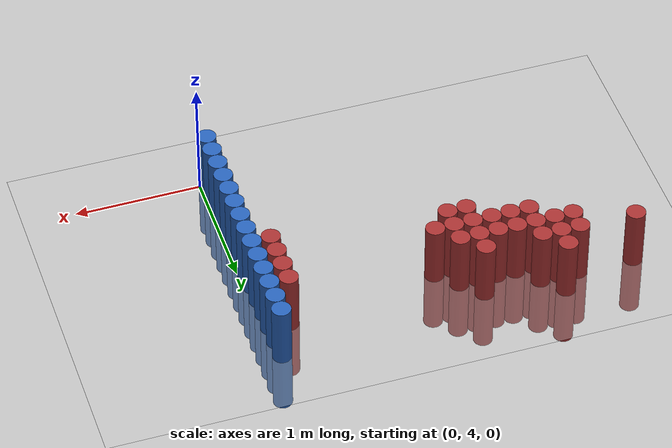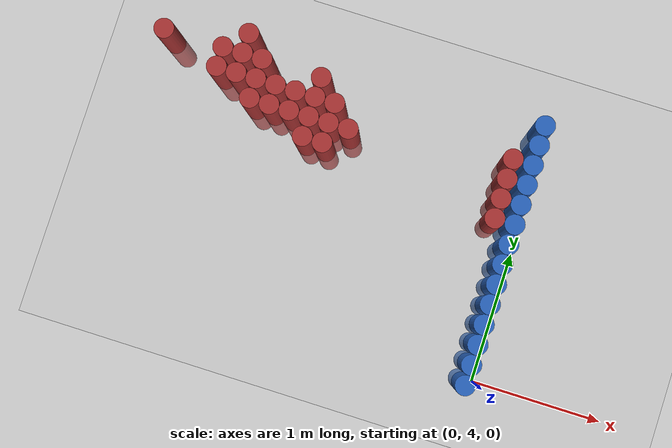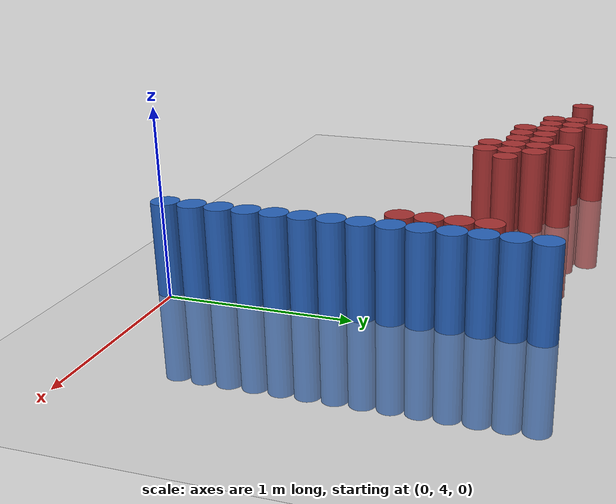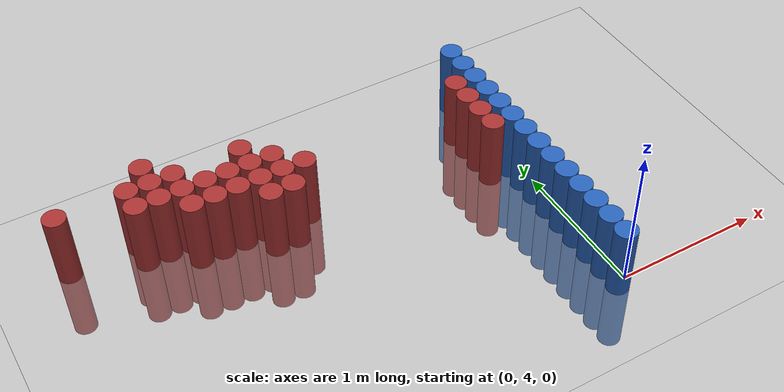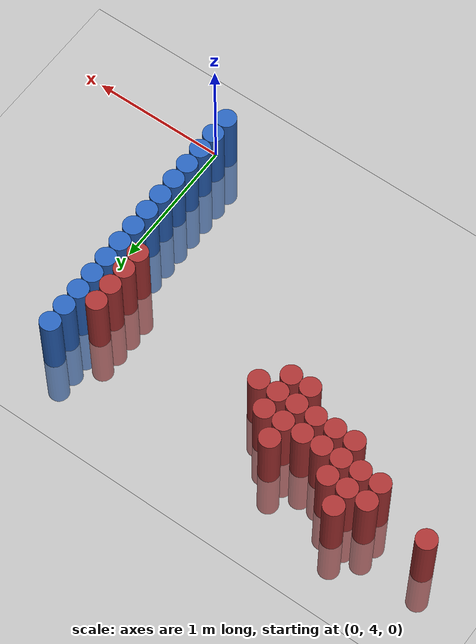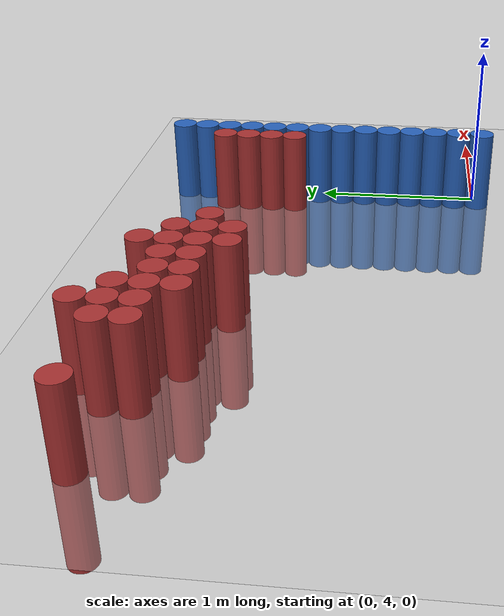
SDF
<sdf version="1.6">
 <world name="default">
  <model name="ground_plane">
   <static>1</static>
   <link name="link">
    <collision name="collision">
     <geometry><plane><normal>0 0 1</normal><size>100 100</size></plane></geometry>
     <surface><friction><ode><mu>100</mu><mu2>50</mu2></ode></friction></surface>
    </collision>
    <visual name="visual">
     <cast_shadows>0</cast_shadows>
     <geometry><plane><normal>0 0 1</normal><size>100 100</size></plane></geometry>
     <material>
      <script><uri>file://media/materials/scripts/gazebo.material</uri><name>Gazebo/Grey</name></script>
     </material>
    </visual>
   </link>
  </model>
  <model name="unit_cylinder_80">
   <static>1</static>
   <pose>-0.075000 3.975000 0.000000 0.000000 0.000000 0.000000</pose>
   <link name="link">
    <inertial>
     <mass>1</mass>
     <inertia><ixx>0.145833</ixx><ixy>0</ixy><ixz>0</ixz><iyy>0.145833</iyy><iyz>0</iyz><izz>0.125</izz></inertia>
    </inertial>
    <collision name="collision">
     <geometry><cylinder><radius>0.075000</radius><length>1</length></cylinder></geometry>
    </collision>
    <visual name="visual">
     <geometry><cylinder><radius>0.075000</radius><length>1</length></cylinder></geometry>
     <material>
      <ambient>0.152000 0.379000 0.720000 1</ambient>
      <diffuse>0.152000 0.379000 0.720000 1</diffuse>
     </material>
     <material>
      <script><name>Gazebo/Grey</name><uri>file://media/materials/scripts/gazebo.material</uri></script>
     </material>
    </visual>
    <sensor name="sensor_contact" type="contact"><contact><collision>collision</collision></contact></sensor>
   </link>
   <plugin filename="gz-sim-touchplugin-system" name="gz::sim::systems::TouchPlugin">
    <target>robot</target>
    <namespace>robot</namespace>
    <time>0.001</time>
    <enabled>true</enabled>
   </plugin>
  </model>
  <model name="unit_cylinder_82">
   <static>1</static>
   <pose>-0.075000 4.125000 0.000000 0.000000 0.000000 0.000000</pose>
   <link name="link">
    <inertial>
     <mass>1</mass>
     <inertia><ixx>0.145833</ixx><ixy>0</ixy><ixz>0</ixz><iyy>0.145833</iyy><iyz>0</iyz><izz>0.125</izz></inertia>
    </inertial>
    <collision name="collision">
     <geometry><cylinder><radius>0.075000</radius><length>1</length></cylinder></geometry>
    </collision>
    <visual name="visual">
     <geometry><cylinder><radius>0.075000</radius><length>1</length></cylinder></geometry>
     <material>
      <ambient>0.152000 0.379000 0.720000 1</ambient>
      <diffuse>0.152000 0.379000 0.720000 1</diffuse>
     </material>
     <material>
      <script><name>Gazebo/Grey</name><uri>file://media/materials/scripts/gazebo.material</uri></script>
     </material>
    </visual>
    <sensor name="sensor_contact" type="contact"><contact><collision>collision</collision></contact></sensor>
   </link>
   <plugin filename="gz-sim-touchplugin-system" name="gz::sim::systems::TouchPlugin">
    <target>robot</target>
    <namespace>robot</namespace>
    <time>0.001</time>
    <enabled>true</enabled>
   </plugin>
  </model>
  <model name="unit_cylinder_84">
   <static>1</static>
   <pose>-0.075000 4.275000 0.000000 0.000000 0.000000 0.000000</pose>
   <link name="link">
    <inertial>
     <mass>1</mass>
     <inertia><ixx>0.145833</ixx><ixy>0</ixy><ixz>0</ixz><iyy>0.145833</iyy><iyz>0</iyz><izz>0.125</izz></inertia>
    </inertial>
    <collision name="collision">
     <geometry><cylinder><radius>0.075000</radius><length>1</length></cylinder></geometry>
    </collision>
    <visual name="visual">
     <geometry><cylinder><radius>0.075000</radius><length>1</length></cylinder></geometry>
     <material>
      <ambient>0.152000 0.379000 0.720000 1</ambient>
      <diffuse>0.152000 0.379000 0.720000 1</diffuse>
     </material>
     <material>
      <script><name>Gazebo/Grey</name><uri>file://media/materials/scripts/gazebo.material</uri></script>
     </material>
    </visual>
    <sensor name="sensor_contact" type="contact"><contact><collision>collision</collision></contact></sensor>
   </link>
   <plugin filename="gz-sim-touchplugin-system" name="gz::sim::systems::TouchPlugin">
    <target>robot</target>
    <namespace>robot</namespace>
    <time>0.001</time>
    <enabled>true</enabled>
   </plugin>
  </model>
  <model name="unit_cylinder_86">
   <static>1</static>
   <pose>-0.075000 4.425000 0.000000 0.000000 0.000000 0.000000</pose>
   <link name="link">
    <inertial>
     <mass>1</mass>
     <inertia><ixx>0.145833</ixx><ixy>0</ixy><ixz>0</ixz><iyy>0.145833</iyy><iyz>0</iyz><izz>0.125</izz></inertia>
    </inertial>
    <collision name="collision">
     <geometry><cylinder><radius>0.075000</radius><length>1</length></cylinder></geometry>
    </collision>
    <visual name="visual">
     <geometry><cylinder><radius>0.075000</radius><length>1</length></cylinder></geometry>
     <material>
      <ambient>0.152000 0.379000 0.720000 1</ambient>
      <diffuse>0.152000 0.379000 0.720000 1</diffuse>
     </material>
     <material>
      <script><name>Gazebo/Grey</name><uri>file://media/materials/scripts/gazebo.material</uri></script>
     </material>
    </visual>
    <sensor name="sensor_contact" type="contact"><contact><collision>collision</collision></contact></sensor>
   </link>
   <plugin filename="gz-sim-touchplugin-system" name="gz::sim::systems::TouchPlugin">
    <target>robot</target>
    <namespace>robot</namespace>
    <time>0.001</time>
    <enabled>true</enabled>
   </plugin>
  </model>
  <model name="unit_cylinder_88">
   <static>1</static>
   <pose>-0.075000 4.575000 0.000000 0.000000 0.000000 0.000000</pose>
   <link name="link">
    <inertial>
     <mass>1</mass>
     <inertia><ixx>0.145833</ixx><ixy>0</ixy><ixz>0</ixz><iyy>0.145833</iyy><iyz>0</iyz><izz>0.125</izz></inertia>
    </inertial>
    <collision name="collision">
     <geometry><cylinder><radius>0.075000</radius><length>1</length></cylinder></geometry>
    </collision>
    <visual name="visual">
     <geometry><cylinder><radius>0.075000</radius><length>1</length></cylinder></geometry>
     <material>
      <ambient>0.152000 0.379000 0.720000 1</ambient>
      <diffuse>0.152000 0.379000 0.720000 1</diffuse>
     </material>
     <material>
      <script><name>Gazebo/Grey</name><uri>file://media/materials/scripts/gazebo.material</uri></script>
     </material>
    </visual>
    <sensor name="sensor_contact" type="contact"><contact><collision>collision</collision></contact></sensor>
   </link>
   <plugin filename="gz-sim-touchplugin-system" name="gz::sim::systems::TouchPlugin">
    <target>robot</target>
    <namespace>robot</namespace>
    <time>0.001</time>
    <enabled>true</enabled>
   </plugin>
  </model>
  <model name="unit_cylinder_90">
   <static>1</static>
   <pose>-0.075000 4.725000 0.000000 0.000000 0.000000 0.000000</pose>
   <link name="link">
    <inertial>
     <mass>1</mass>
     <inertia><ixx>0.145833</ixx><ixy>0</ixy><ixz>0</ixz><iyy>0.145833</iyy><iyz>0</iyz><izz>0.125</izz></inertia>
    </inertial>
    <collision name="collision">
     <geometry><cylinder><radius>0.075000</radius><length>1</length></cylinder></geometry>
    </collision>
    <visual name="visual">
     <geometry><cylinder><radius>0.075000</radius><length>1</length></cylinder></geometry>
     <material>
      <ambient>0.152000 0.379000 0.720000 1</ambient>
      <diffuse>0.152000 0.379000 0.720000 1</diffuse>
     </material>
     <material>
      <script><name>Gazebo/Grey</name><uri>file://media/materials/scripts/gazebo.material</uri></script>
     </material>
    </visual>
    <sensor name="sensor_contact" type="contact"><contact><collision>collision</collision></contact></sensor>
   </link>
   <plugin filename="gz-sim-touchplugin-system" name="gz::sim::systems::TouchPlugin">
    <target>robot</target>
    <namespace>robot</namespace>
    <time>0.001</time>
    <enabled>true</enabled>
   </plugin>
  </model>
  <model name="unit_cylinder_92">
   <static>1</static>
   <pose>-0.075000 4.875000 0.000000 0.000000 0.000000 0.000000</pose>
   <link name="link">
    <inertial>
     <mass>1</mass>
     <inertia><ixx>0.145833</ixx><ixy>0</ixy><ixz>0</ixz><iyy>0.145833</iyy><iyz>0</iyz><izz>0.125</izz></inertia>
    </inertial>
    <collision name="collision">
     <geometry><cylinder><radius>0.075000</radius><length>1</length></cylinder></geometry>
    </collision>
    <visual name="visual">
     <geometry><cylinder><radius>0.075000</radius><length>1</length></cylinder></geometry>
     <material>
      <ambient>0.152000 0.379000 0.720000 1</ambient>
      <diffuse>0.152000 0.379000 0.720000 1</diffuse>
     </material>
     <material>
      <script><name>Gazebo/Grey</name><uri>file://media/materials/scripts/gazebo.material</uri></script>
     </material>
    </visual>
    <sensor name="sensor_contact" type="contact"><contact><collision>collision</collision></contact></sensor>
   </link>
   <plugin filename="gz-sim-touchplugin-system" name="gz::sim::systems::TouchPlugin">
    <target>robot</target>
    <namespace>robot</namespace>
    <time>0.001</time>
    <enabled>true</enabled>
   </plugin>
  </model>
  <model name="unit_cylinder_94">
   <static>1</static>
   <pose>-0.075000 5.025000 0.000000 0.000000 0.000000 0.000000</pose>
   <link name="link">
    <inertial>
     <mass>1</mass>
     <inertia><ixx>0.145833</ixx><ixy>0</ixy><ixz>0</ixz><iyy>0.145833</iyy><iyz>0</iyz><izz>0.125</izz></inertia>
    </inertial>
    <collision name="collision">
     <geometry><cylinder><radius>0.075000</radius><length>1</length></cylinder></geometry>
    </collision>
    <visual name="visual">
     <geometry><cylinder><radius>0.075000</radius><length>1</length></cylinder></geometry>
     <material>
      <ambient>0.152000 0.379000 0.720000 1</ambient>
      <diffuse>0.152000 0.379000 0.720000 1</diffuse>
     </material>
     <material>
      <script><name>Gazebo/Grey</name><uri>file://media/materials/scripts/gazebo.material</uri></script>
     </material>
    </visual>
    <sensor name="sensor_contact" type="contact"><contact><collision>collision</collision></contact></sensor>
   </link>
   <plugin filename="gz-sim-touchplugin-system" name="gz::sim::systems::TouchPlugin">
    <target>robot</target>
    <namespace>robot</namespace>
    <time>0.001</time>
    <enabled>true</enabled>
   </plugin>
  </model>
  <model name="unit_cylinder_205">
   <static>1</static>
   <pose>-2.925000 5.775000 0.000000 0.000000 0.000000 0.000000</pose>
   <link name="link">
    <inertial>
     <mass>1</mass>
     <inertia><ixx>0.145833</ixx><ixy>0</ixy><ixz>0</ixz><iyy>0.145833</iyy><iyz>0</iyz><izz>0.125</izz></inertia>
    </inertial>
    <collision name="collision">
     <geometry><cylinder><radius>0.075000</radius><length>1</length></cylinder></geometry>
    </collision>
    <visual name="visual">
     <geometry><cylinder><radius>0.075000</radius><length>1</length></cylinder></geometry>
     <material>
      <ambient>0.648000 0.192000 0.192000 1</ambient>
      <diffuse>0.648000 0.192000 0.192000 1</diffuse>
     </material>
     <material>
      <script><name>Gazebo/Grey</name><uri>file://media/materials/scripts/gazebo.material</uri></script>
     </material>
    </visual>
    <sensor name="sensor_contact" type="contact"><contact><collision>collision</collision></contact></sensor>
   </link>
   <plugin filename="gz-sim-touchplugin-system" name="gz::sim::systems::TouchPlugin">
    <target>robot</target>
    <namespace>robot</namespace>
    <time>0.001</time>
    <enabled>true</enabled>
   </plugin>
  </model>
  <model name="unit_cylinder_232">
   <static>1</static>
   <pose>-2.475000 5.625000 0.000000 0.000000 0.000000 0.000000</pose>
   <link name="link">
    <inertial>
     <mass>1</mass>
     <inertia><ixx>0.145833</ixx><ixy>0</ixy><ixz>0</ixz><iyy>0.145833</iyy><iyz>0</iyz><izz>0.125</izz></inertia>
    </inertial>
    <collision name="collision">
     <geometry><cylinder><radius>0.075000</radius><length>1</length></cylinder></geometry>
    </collision>
    <visual name="visual">
     <geometry><cylinder><radius>0.075000</radius><length>1</length></cylinder></geometry>
     <material>
      <ambient>0.648000 0.192000 0.192000 1</ambient>
      <diffuse>0.648000 0.192000 0.192000 1</diffuse>
     </material>
     <material>
      <script><name>Gazebo/Grey</name><uri>file://media/materials/scripts/gazebo.material</uri></script>
     </material>
    </visual>
    <sensor name="sensor_contact" type="contact"><contact><collision>collision</collision></contact></sensor>
   </link>
   <plugin filename="gz-sim-touchplugin-system" name="gz::sim::systems::TouchPlugin">
    <target>robot</target>
    <namespace>robot</namespace>
    <time>0.001</time>
    <enabled>true</enabled>
   </plugin>
  </model>
  <model name="unit_cylinder_233">
   <static>1</static>
   <pose>-2.475000 5.775000 0.000000 0.000000 0.000000 0.000000</pose>
   <link name="link">
    <inertial>
     <mass>1</mass>
     <inertia><ixx>0.145833</ixx><ixy>0</ixy><ixz>0</ixz><iyy>0.145833</iyy><iyz>0</iyz><izz>0.125</izz></inertia>
    </inertial>
    <collision name="collision">
     <geometry><cylinder><radius>0.075000</radius><length>1</length></cylinder></geometry>
    </collision>
    <visual name="visual">
     <geometry><cylinder><radius>0.075000</radius><length>1</length></cylinder></geometry>
     <material>
      <ambient>0.648000 0.192000 0.192000 1</ambient>
      <diffuse>0.648000 0.192000 0.192000 1</diffuse>
     </material>
     <material>
      <script><name>Gazebo/Grey</name><uri>file://media/materials/scripts/gazebo.material</uri></script>
     </material>
    </visual>
    <sensor name="sensor_contact" type="contact"><contact><collision>collision</collision></contact></sensor>
   </link>
   <plugin filename="gz-sim-touchplugin-system" name="gz::sim::systems::TouchPlugin">
    <target>robot</target>
    <namespace>robot</namespace>
    <time>0.001</time>
    <enabled>true</enabled>
   </plugin>
  </model>
  <model name="unit_cylinder_241">
   <static>1</static>
   <pose>-2.325000 5.625000 0.000000 0.000000 0.000000 0.000000</pose>
   <link name="link">
    <inertial>
     <mass>1</mass>
     <inertia><ixx>0.145833</ixx><ixy>0</ixy><ixz>0</ixz><iyy>0.145833</iyy><iyz>0</iyz><izz>0.125</izz></inertia>
    </inertial>
    <collision name="collision">
     <geometry><cylinder><radius>0.075000</radius><length>1</length></cylinder></geometry>
    </collision>
    <visual name="visual">
     <geometry><cylinder><radius>0.075000</radius><length>1</length></cylinder></geometry>
     <material>
      <ambient>0.648000 0.192000 0.192000 1</ambient>
      <diffuse>0.648000 0.192000 0.192000 1</diffuse>
     </material>
     <material>
      <script><name>Gazebo/Grey</name><uri>file://media/materials/scripts/gazebo.material</uri></script>
     </material>
    </visual>
    <sensor name="sensor_contact" type="contact"><contact><collision>collision</collision></contact></sensor>
   </link>
   <plugin filename="gz-sim-touchplugin-system" name="gz::sim::systems::TouchPlugin">
    <target>robot</target>
    <namespace>robot</namespace>
    <time>0.001</time>
    <enabled>true</enabled>
   </plugin>
  </model>
  <model name="unit_cylinder_242">
   <static>1</static>
   <pose>-2.325000 5.775000 0.000000 0.000000 0.000000 0.000000</pose>
   <link name="link">
    <inertial>
     <mass>1</mass>
     <inertia><ixx>0.145833</ixx><ixy>0</ixy><ixz>0</ixz><iyy>0.145833</iyy><iyz>0</iyz><izz>0.125</izz></inertia>
    </inertial>
    <collision name="collision">
     <geometry><cylinder><radius>0.075000</radius><length>1</length></cylinder></geometry>
    </collision>
    <visual name="visual">
     <geometry><cylinder><radius>0.075000</radius><length>1</length></cylinder></geometry>
     <material>
      <ambient>0.648000 0.192000 0.192000 1</ambient>
      <diffuse>0.648000 0.192000 0.192000 1</diffuse>
     </material>
     <material>
      <script><name>Gazebo/Grey</name><uri>file://media/materials/scripts/gazebo.material</uri></script>
     </material>
    </visual>
    <sensor name="sensor_contact" type="contact"><contact><collision>collision</collision></contact></sensor>
   </link>
   <plugin filename="gz-sim-touchplugin-system" name="gz::sim::systems::TouchPlugin">
    <target>robot</target>
    <namespace>robot</namespace>
    <time>0.001</time>
    <enabled>true</enabled>
   </plugin>
  </model>
  <model name="unit_cylinder_243">
   <static>1</static>
   <pose>-2.325000 5.925000 0.000000 0.000000 0.000000 0.000000</pose>
   <link name="link">
    <inertial>
     <mass>1</mass>
     <inertia><ixx>0.145833</ixx><ixy>0</ixy><ixz>0</ixz><iyy>0.145833</iyy><iyz>0</iyz><izz>0.125</izz></inertia>
    </inertial>
    <collision name="collision">
     <geometry><cylinder><radius>0.075000</radius><length>1</length></cylinder></geometry>
    </collision>
    <visual name="visual">
     <geometry><cylinder><radius>0.075000</radius><length>1</length></cylinder></geometry>
     <material>
      <ambient>0.648000 0.192000 0.192000 1</ambient>
      <diffuse>0.648000 0.192000 0.192000 1</diffuse>
     </material>
     <material>
      <script><name>Gazebo/Grey</name><uri>file://media/materials/scripts/gazebo.material</uri></script>
     </material>
    </visual>
    <sensor name="sensor_contact" type="contact"><contact><collision>collision</collision></contact></sensor>
   </link>
   <plugin filename="gz-sim-touchplugin-system" name="gz::sim::systems::TouchPlugin">
    <target>robot</target>
    <namespace>robot</namespace>
    <time>0.001</time>
    <enabled>true</enabled>
   </plugin>
  </model>
  <model name="unit_cylinder_252">
   <static>1</static>
   <pose>-2.175000 5.475000 0.000000 0.000000 0.000000 0.000000</pose>
   <link name="link">
    <inertial>
     <mass>1</mass>
     <inertia><ixx>0.145833</ixx><ixy>0</ixy><ixz>0</ixz><iyy>0.145833</iyy><iyz>0</iyz><izz>0.125</izz></inertia>
    </inertial>
    <collision name="collision">
     <geometry><cylinder><radius>0.075000</radius><length>1</length></cylinder></geometry>
    </collision>
    <visual name="visual">
     <geometry><cylinder><radius>0.075000</radius><length>1</length></cylinder></geometry>
     <material>
      <ambient>0.648000 0.192000 0.192000 1</ambient>
      <diffuse>0.648000 0.192000 0.192000 1</diffuse>
     </material>
     <material>
      <script><name>Gazebo/Grey</name><uri>file://media/materials/scripts/gazebo.material</uri></script>
     </material>
    </visual>
    <sensor name="sensor_contact" type="contact"><contact><collision>collision</collision></contact></sensor>
   </link>
   <plugin filename="gz-sim-touchplugin-system" name="gz::sim::systems::TouchPlugin">
    <target>robot</target>
    <namespace>robot</namespace>
    <time>0.001</time>
    <enabled>true</enabled>
   </plugin>
  </model>
  <model name="unit_cylinder_253">
   <static>1</static>
   <pose>-2.175000 5.625000 0.000000 0.000000 0.000000 0.000000</pose>
   <link name="link">
    <inertial>
     <mass>1</mass>
     <inertia><ixx>0.145833</ixx><ixy>0</ixy><ixz>0</ixz><iyy>0.145833</iyy><iyz>0</iyz><izz>0.125</izz></inertia>
    </inertial>
    <collision name="collision">
     <geometry><cylinder><radius>0.075000</radius><length>1</length></cylinder></geometry>
    </collision>
    <visual name="visual">
     <geometry><cylinder><radius>0.075000</radius><length>1</length></cylinder></geometry>
     <material>
      <ambient>0.648000 0.192000 0.192000 1</ambient>
      <diffuse>0.648000 0.192000 0.192000 1</diffuse>
     </material>
     <material>
      <script><name>Gazebo/Grey</name><uri>file://media/materials/scripts/gazebo.material</uri></script>
     </material>
    </visual>
    <sensor name="sensor_contact" type="contact"><contact><collision>collision</collision></contact></sensor>
   </link>
   <plugin filename="gz-sim-touchplugin-system" name="gz::sim::systems::TouchPlugin">
    <target>robot</target>
    <namespace>robot</namespace>
    <time>0.001</time>
    <enabled>true</enabled>
   </plugin>
  </model>
  <model name="unit_cylinder_254">
   <static>1</static>
   <pose>-2.175000 5.775000 0.000000 0.000000 0.000000 0.000000</pose>
   <link name="link">
    <inertial>
     <mass>1</mass>
     <inertia><ixx>0.145833</ixx><ixy>0</ixy><ixz>0</ixz><iyy>0.145833</iyy><iyz>0</iyz><izz>0.125</izz></inertia>
    </inertial>
    <collision name="collision">
     <geometry><cylinder><radius>0.075000</radius><length>1</length></cylinder></geometry>
    </collision>
    <visual name="visual">
     <geometry><cylinder><radius>0.075000</radius><length>1</length></cylinder></geometry>
     <material>
      <ambient>0.648000 0.192000 0.192000 1</ambient>
      <diffuse>0.648000 0.192000 0.192000 1</diffuse>
     </material>
     <material>
      <script><name>Gazebo/Grey</name><uri>file://media/materials/scripts/gazebo.material</uri></script>
     </material>
    </visual>
    <sensor name="sensor_contact" type="contact"><contact><collision>collision</collision></contact></sensor>
   </link>
   <plugin filename="gz-sim-touchplugin-system" name="gz::sim::systems::TouchPlugin">
    <target>robot</target>
    <namespace>robot</namespace>
    <time>0.001</time>
    <enabled>true</enabled>
   </plugin>
  </model>
  <model name="unit_cylinder_259">
   <static>1</static>
   <pose>-2.025000 5.475000 0.000000 0.000000 0.000000 0.000000</pose>
   <link name="link">
    <inertial>
     <mass>1</mass>
     <inertia><ixx>0.145833</ixx><ixy>0</ixy><ixz>0</ixz><iyy>0.145833</iyy><iyz>0</iyz><izz>0.125</izz></inertia>
    </inertial>
    <collision name="collision">
     <geometry><cylinder><radius>0.075000</radius><length>1</length></cylinder></geometry>
    </collision>
    <visual name="visual">
     <geometry><cylinder><radius>0.075000</radius><length>1</length></cylinder></geometry>
     <material>
      <ambient>0.648000 0.192000 0.192000 1</ambient>
      <diffuse>0.648000 0.192000 0.192000 1</diffuse>
     </material>
     <material>
      <script><name>Gazebo/Grey</name><uri>file://media/materials/scripts/gazebo.material</uri></script>
     </material>
    </visual>
    <sensor name="sensor_contact" type="contact"><contact><collision>collision</collision></contact></sensor>
   </link>
   <plugin filename="gz-sim-touchplugin-system" name="gz::sim::systems::TouchPlugin">
    <target>robot</target>
    <namespace>robot</namespace>
    <time>0.001</time>
    <enabled>true</enabled>
   </plugin>
  </model>
  <model name="unit_cylinder_260">
   <static>1</static>
   <pose>-2.025000 5.625000 0.000000 0.000000 0.000000 0.000000</pose>
   <link name="link">
    <inertial>
     <mass>1</mass>
     <inertia><ixx>0.145833</ixx><ixy>0</ixy><ixz>0</ixz><iyy>0.145833</iyy><iyz>0</iyz><izz>0.125</izz></inertia>
    </inertial>
    <collision name="collision">
     <geometry><cylinder><radius>0.075000</radius><length>1</length></cylinder></geometry>
    </collision>
    <visual name="visual">
     <geometry><cylinder><radius>0.075000</radius><length>1</length></cylinder></geometry>
     <material>
      <ambient>0.648000 0.192000 0.192000 1</ambient>
      <diffuse>0.648000 0.192000 0.192000 1</diffuse>
     </material>
     <material>
      <script><name>Gazebo/Grey</name><uri>file://media/materials/scripts/gazebo.material</uri></script>
     </material>
    </visual>
    <sensor name="sensor_contact" type="contact"><contact><collision>collision</collision></contact></sensor>
   </link>
   <plugin filename="gz-sim-touchplugin-system" name="gz::sim::systems::TouchPlugin">
    <target>robot</target>
    <namespace>robot</namespace>
    <time>0.001</time>
    <enabled>true</enabled>
   </plugin>
  </model>
  <model name="unit_cylinder_266">
   <static>1</static>
   <pose>-1.875000 5.475000 0.000000 0.000000 0.000000 0.000000</pose>
   <link name="link">
    <inertial>
     <mass>1</mass>
     <inertia><ixx>0.145833</ixx><ixy>0</ixy><ixz>0</ixz><iyy>0.145833</iyy><iyz>0</iyz><izz>0.125</izz></inertia>
    </inertial>
    <collision name="collision">
     <geometry><cylinder><radius>0.075000</radius><length>1</length></cylinder></geometry>
    </collision>
    <visual name="visual">
     <geometry><cylinder><radius>0.075000</radius><length>1</length></cylinder></geometry>
     <material>
      <ambient>0.648000 0.192000 0.192000 1</ambient>
      <diffuse>0.648000 0.192000 0.192000 1</diffuse>
     </material>
     <material>
      <script><name>Gazebo/Grey</name><uri>file://media/materials/scripts/gazebo.material</uri></script>
     </material>
    </visual>
    <sensor name="sensor_contact" type="contact"><contact><collision>collision</collision></contact></sensor>
   </link>
   <plugin filename="gz-sim-touchplugin-system" name="gz::sim::systems::TouchPlugin">
    <target>robot</target>
    <namespace>robot</namespace>
    <time>0.001</time>
    <enabled>true</enabled>
   </plugin>
  </model>
  <model name="unit_cylinder_267">
   <static>1</static>
   <pose>-1.875000 5.625000 0.000000 0.000000 0.000000 0.000000</pose>
   <link name="link">
    <inertial>
     <mass>1</mass>
     <inertia><ixx>0.145833</ixx><ixy>0</ixy><ixz>0</ixz><iyy>0.145833</iyy><iyz>0</iyz><izz>0.125</izz></inertia>
    </inertial>
    <collision name="collision">
     <geometry><cylinder><radius>0.075000</radius><length>1</length></cylinder></geometry>
    </collision>
    <visual name="visual">
     <geometry><cylinder><radius>0.075000</radius><length>1</length></cylinder></geometry>
     <material>
      <ambient>0.648000 0.192000 0.192000 1</ambient>
      <diffuse>0.648000 0.192000 0.192000 1</diffuse>
     </material>
     <material>
      <script><name>Gazebo/Grey</name><uri>file://media/materials/scripts/gazebo.material</uri></script>
     </material>
    </visual>
    <sensor name="sensor_contact" type="contact"><contact><collision>collision</collision></contact></sensor>
   </link>
   <plugin filename="gz-sim-touchplugin-system" name="gz::sim::systems::TouchPlugin">
    <target>robot</target>
    <namespace>robot</namespace>
    <time>0.001</time>
    <enabled>true</enabled>
   </plugin>
  </model>
  <model name="unit_cylinder_273">
   <static>1</static>
   <pose>-1.725000 5.325000 0.000000 0.000000 0.000000 0.000000</pose>
   <link name="link">
    <inertial>
     <mass>1</mass>
     <inertia><ixx>0.145833</ixx><ixy>0</ixy><ixz>0</ixz><iyy>0.145833</iyy><iyz>0</iyz><izz>0.125</izz></inertia>
    </inertial>
    <collision name="collision">
     <geometry><cylinder><radius>0.075000</radius><length>1</length></cylinder></geometry>
    </collision>
    <visual name="visual">
     <geometry><cylinder><radius>0.075000</radius><length>1</length></cylinder></geometry>
     <material>
      <ambient>0.648000 0.192000 0.192000 1</ambient>
      <diffuse>0.648000 0.192000 0.192000 1</diffuse>
     </material>
     <material>
      <script><name>Gazebo/Grey</name><uri>file://media/materials/scripts/gazebo.material</uri></script>
     </material>
    </visual>
    <sensor name="sensor_contact" type="contact"><contact><collision>collision</collision></contact></sensor>
   </link>
   <plugin filename="gz-sim-touchplugin-system" name="gz::sim::systems::TouchPlugin">
    <target>robot</target>
    <namespace>robot</namespace>
    <time>0.001</time>
    <enabled>true</enabled>
   </plugin>
  </model>
  <model name="unit_cylinder_274">
   <static>1</static>
   <pose>-1.725000 5.475000 0.000000 0.000000 0.000000 0.000000</pose>
   <link name="link">
    <inertial>
     <mass>1</mass>
     <inertia><ixx>0.145833</ixx><ixy>0</ixy><ixz>0</ixz><iyy>0.145833</iyy><iyz>0</iyz><izz>0.125</izz></inertia>
    </inertial>
    <collision name="collision">
     <geometry><cylinder><radius>0.075000</radius><length>1</length></cylinder></geometry>
    </collision>
    <visual name="visual">
     <geometry><cylinder><radius>0.075000</radius><length>1</length></cylinder></geometry>
     <material>
      <ambient>0.648000 0.192000 0.192000 1</ambient>
      <diffuse>0.648000 0.192000 0.192000 1</diffuse>
     </material>
     <material>
      <script><name>Gazebo/Grey</name><uri>file://media/materials/scripts/gazebo.material</uri></script>
     </material>
    </visual>
    <sensor name="sensor_contact" type="contact"><contact><collision>collision</collision></contact></sensor>
   </link>
   <plugin filename="gz-sim-touchplugin-system" name="gz::sim::systems::TouchPlugin">
    <target>robot</target>
    <namespace>robot</namespace>
    <time>0.001</time>
    <enabled>true</enabled>
   </plugin>
  </model>
  <model name="unit_cylinder_275">
   <static>1</static>
   <pose>-1.725000 5.625000 0.000000 0.000000 0.000000 0.000000</pose>
   <link name="link">
    <inertial>
     <mass>1</mass>
     <inertia><ixx>0.145833</ixx><ixy>0</ixy><ixz>0</ixz><iyy>0.145833</iyy><iyz>0</iyz><izz>0.125</izz></inertia>
    </inertial>
    <collision name="collision">
     <geometry><cylinder><radius>0.075000</radius><length>1</length></cylinder></geometry>
    </collision>
    <visual name="visual">
     <geometry><cylinder><radius>0.075000</radius><length>1</length></cylinder></geometry>
     <material>
      <ambient>0.648000 0.192000 0.192000 1</ambient>
      <diffuse>0.648000 0.192000 0.192000 1</diffuse>
     </material>
     <material>
      <script><name>Gazebo/Grey</name><uri>file://media/materials/scripts/gazebo.material</uri></script>
     </material>
    </visual>
    <sensor name="sensor_contact" type="contact"><contact><collision>collision</collision></contact></sensor>
   </link>
   <plugin filename="gz-sim-touchplugin-system" name="gz::sim::systems::TouchPlugin">
    <target>robot</target>
    <namespace>robot</namespace>
    <time>0.001</time>
    <enabled>true</enabled>
   </plugin>
  </model>
  <model name="unit_cylinder_276">
   <static>1</static>
   <pose>-1.725000 5.775000 0.000000 0.000000 0.000000 0.000000</pose>
   <link name="link">
    <inertial>
     <mass>1</mass>
     <inertia><ixx>0.145833</ixx><ixy>0</ixy><ixz>0</ixz><iyy>0.145833</iyy><iyz>0</iyz><izz>0.125</izz></inertia>
    </inertial>
    <collision name="collision">
     <geometry><cylinder><radius>0.075000</radius><length>1</length></cylinder></geometry>
    </collision>
    <visual name="visual">
     <geometry><cylinder><radius>0.075000</radius><length>1</length></cylinder></geometry>
     <material>
      <ambient>0.648000 0.192000 0.192000 1</ambient>
      <diffuse>0.648000 0.192000 0.192000 1</diffuse>
     </material>
     <material>
      <script><name>Gazebo/Grey</name><uri>file://media/materials/scripts/gazebo.material</uri></script>
     </material>
    </visual>
    <sensor name="sensor_contact" type="contact"><contact><collision>collision</collision></contact></sensor>
   </link>
   <plugin filename="gz-sim-touchplugin-system" name="gz::sim::systems::TouchPlugin">
    <target>robot</target>
    <namespace>robot</namespace>
    <time>0.001</time>
    <enabled>true</enabled>
   </plugin>
  </model>
  <model name="unit_cylinder_277">
   <static>1</static>
   <pose>-1.575000 5.325000 0.000000 0.000000 0.000000 0.000000</pose>
   <link name="link">
    <inertial>
     <mass>1</mass>
     <inertia><ixx>0.145833</ixx><ixy>0</ixy><ixz>0</ixz><iyy>0.145833</iyy><iyz>0</iyz><izz>0.125</izz></inertia>
    </inertial>
    <collision name="collision">
     <geometry><cylinder><radius>0.075000</radius><length>1</length></cylinder></geometry>
    </collision>
    <visual name="visual">
     <geometry><cylinder><radius>0.075000</radius><length>1</length></cylinder></geometry>
     <material>
      <ambient>0.648000 0.192000 0.192000 1</ambient>
      <diffuse>0.648000 0.192000 0.192000 1</diffuse>
     </material>
     <material>
      <script><name>Gazebo/Grey</name><uri>file://media/materials/scripts/gazebo.material</uri></script>
     </material>
    </visual>
    <sensor name="sensor_contact" type="contact"><contact><collision>collision</collision></contact></sensor>
   </link>
   <plugin filename="gz-sim-touchplugin-system" name="gz::sim::systems::TouchPlugin">
    <target>robot</target>
    <namespace>robot</namespace>
    <time>0.001</time>
    <enabled>true</enabled>
   </plugin>
  </model>
  <model name="unit_cylinder_278">
   <static>1</static>
   <pose>-1.575000 5.475000 0.000000 0.000000 0.000000 0.000000</pose>
   <link name="link">
    <inertial>
     <mass>1</mass>
     <inertia><ixx>0.145833</ixx><ixy>0</ixy><ixz>0</ixz><iyy>0.145833</iyy><iyz>0</iyz><izz>0.125</izz></inertia>
    </inertial>
    <collision name="collision">
     <geometry><cylinder><radius>0.075000</radius><length>1</length></cylinder></geometry>
    </collision>
    <visual name="visual">
     <geometry><cylinder><radius>0.075000</radius><length>1</length></cylinder></geometry>
     <material>
      <ambient>0.648000 0.192000 0.192000 1</ambient>
      <diffuse>0.648000 0.192000 0.192000 1</diffuse>
     </material>
     <material>
      <script><name>Gazebo/Grey</name><uri>file://media/materials/scripts/gazebo.material</uri></script>
     </material>
    </visual>
    <sensor name="sensor_contact" type="contact"><contact><collision>collision</collision></contact></sensor>
   </link>
   <plugin filename="gz-sim-touchplugin-system" name="gz::sim::systems::TouchPlugin">
    <target>robot</target>
    <namespace>robot</namespace>
    <time>0.001</time>
    <enabled>true</enabled>
   </plugin>
  </model>
  <model name="unit_cylinder_279">
   <static>1</static>
   <pose>-1.575000 5.625000 0.000000 0.000000 0.000000 0.000000</pose>
   <link name="link">
    <inertial>
     <mass>1</mass>
     <inertia><ixx>0.145833</ixx><ixy>0</ixy><ixz>0</ixz><iyy>0.145833</iyy><iyz>0</iyz><izz>0.125</izz></inertia>
    </inertial>
    <collision name="collision">
     <geometry><cylinder><radius>0.075000</radius><length>1</length></cylinder></geometry>
    </collision>
    <visual name="visual">
     <geometry><cylinder><radius>0.075000</radius><length>1</length></cylinder></geometry>
     <material>
      <ambient>0.648000 0.192000 0.192000 1</ambient>
      <diffuse>0.648000 0.192000 0.192000 1</diffuse>
     </material>
     <material>
      <script><name>Gazebo/Grey</name><uri>file://media/materials/scripts/gazebo.material</uri></script>
     </material>
    </visual>
    <sensor name="sensor_contact" type="contact"><contact><collision>collision</collision></contact></sensor>
   </link>
   <plugin filename="gz-sim-touchplugin-system" name="gz::sim::systems::TouchPlugin">
    <target>robot</target>
    <namespace>robot</namespace>
    <time>0.001</time>
    <enabled>true</enabled>
   </plugin>
  </model>
  <model name="unit_cylinder_280">
   <static>1</static>
   <pose>-1.425000 5.475000 0.000000 0.000000 0.000000 0.000000</pose>
   <link name="link">
    <inertial>
     <mass>1</mass>
     <inertia><ixx>0.145833</ixx><ixy>0</ixy><ixz>0</ixz><iyy>0.145833</iyy><iyz>0</iyz><izz>0.125</izz></inertia>
    </inertial>
    <collision name="collision">
     <geometry><cylinder><radius>0.075000</radius><length>1</length></cylinder></geometry>
    </collision>
    <visual name="visual">
     <geometry><cylinder><radius>0.075000</radius><length>1</length></cylinder></geometry>
     <material>
      <ambient>0.648000 0.192000 0.192000 1</ambient>
      <diffuse>0.648000 0.192000 0.192000 1</diffuse>
     </material>
     <material>
      <script><name>Gazebo/Grey</name><uri>file://media/materials/scripts/gazebo.material</uri></script>
     </material>
    </visual>
    <sensor name="sensor_contact" type="contact"><contact><collision>collision</collision></contact></sensor>
   </link>
   <plugin filename="gz-sim-touchplugin-system" name="gz::sim::systems::TouchPlugin">
    <target>robot</target>
    <namespace>robot</namespace>
    <time>0.001</time>
    <enabled>true</enabled>
   </plugin>
  </model>
  <model name="unit_cylinder_312">
   <static>1</static>
   <pose>-0.225000 5.175000 0.000000 0.000000 0.000000 0.000000</pose>
   <link name="link">
    <inertial>
     <mass>1</mass>
     <inertia><ixx>0.145833</ixx><ixy>0</ixy><ixz>0</ixz><iyy>0.145833</iyy><iyz>0</iyz><izz>0.125</izz></inertia>
    </inertial>
    <collision name="collision">
     <geometry><cylinder><radius>0.075000</radius><length>1</length></cylinder></geometry>
    </collision>
    <visual name="visual">
     <geometry><cylinder><radius>0.075000</radius><length>1</length></cylinder></geometry>
     <material>
      <ambient>0.648000 0.192000 0.192000 1</ambient>
      <diffuse>0.648000 0.192000 0.192000 1</diffuse>
     </material>
     <material>
      <script><name>Gazebo/Grey</name><uri>file://media/materials/scripts/gazebo.material</uri></script>
     </material>
    </visual>
    <sensor name="sensor_contact" type="contact"><contact><collision>collision</collision></contact></sensor>
   </link>
   <plugin filename="gz-sim-touchplugin-system" name="gz::sim::systems::TouchPlugin">
    <target>robot</target>
    <namespace>robot</namespace>
    <time>0.001</time>
    <enabled>true</enabled>
   </plugin>
  </model>
  <model name="unit_cylinder_313">
   <static>1</static>
   <pose>-0.225000 5.325000 0.000000 0.000000 0.000000 0.000000</pose>
   <link name="link">
    <inertial>
     <mass>1</mass>
     <inertia><ixx>0.145833</ixx><ixy>0</ixy><ixz>0</ixz><iyy>0.145833</iyy><iyz>0</iyz><izz>0.125</izz></inertia>
    </inertial>
    <collision name="collision">
     <geometry><cylinder><radius>0.075000</radius><length>1</length></cylinder></geometry>
    </collision>
    <visual name="visual">
     <geometry><cylinder><radius>0.075000</radius><length>1</length></cylinder></geometry>
     <material>
      <ambient>0.648000 0.192000 0.192000 1</ambient>
      <diffuse>0.648000 0.192000 0.192000 1</diffuse>
     </material>
     <material>
      <script><name>Gazebo/Grey</name><uri>file://media/materials/scripts/gazebo.material</uri></script>
     </material>
    </visual>
    <sensor name="sensor_contact" type="contact"><contact><collision>collision</collision></contact></sensor>
   </link>
   <plugin filename="gz-sim-touchplugin-system" name="gz::sim::systems::TouchPlugin">
    <target>robot</target>
    <namespace>robot</namespace>
    <time>0.001</time>
    <enabled>true</enabled>
   </plugin>
  </model>
  <model name="unit_cylinder_314">
   <static>1</static>
   <pose>-0.225000 5.475000 0.000000 0.000000 0.000000 0.000000</pose>
   <link name="link">
    <inertial>
     <mass>1</mass>
     <inertia><ixx>0.145833</ixx><ixy>0</ixy><ixz>0</ixz><iyy>0.145833</iyy><iyz>0</iyz><izz>0.125</izz></inertia>
    </inertial>
    <collision name="collision">
     <geometry><cylinder><radius>0.075000</radius><length>1</length></cylinder></geometry>
    </collision>
    <visual name="visual">
     <geometry><cylinder><radius>0.075000</radius><length>1</length></cylinder></geometry>
     <material>
      <ambient>0.648000 0.192000 0.192000 1</ambient>
      <diffuse>0.648000 0.192000 0.192000 1</diffuse>
     </material>
     <material>
      <script><name>Gazebo/Grey</name><uri>file://media/materials/scripts/gazebo.material</uri></script>
     </material>
    </visual>
    <sensor name="sensor_contact" type="contact"><contact><collision>collision</collision></contact></sensor>
   </link>
   <plugin filename="gz-sim-touchplugin-system" name="gz::sim::systems::TouchPlugin">
    <target>robot</target>
    <namespace>robot</namespace>
    <time>0.001</time>
    <enabled>true</enabled>
   </plugin>
  </model>
  <model name="unit_cylinder_315">
   <static>1</static>
   <pose>-0.225000 5.625000 0.000000 0.000000 0.000000 0.000000</pose>
   <link name="link">
    <inertial>
     <mass>1</mass>
     <inertia><ixx>0.145833</ixx><ixy>0</ixy><ixz>0</ixz><iyy>0.145833</iyy><iyz>0</iyz><izz>0.125</izz></inertia>
    </inertial>
    <collision name="collision">
     <geometry><cylinder><radius>0.075000</radius><length>1</length></cylinder></geometry>
    </collision>
    <visual name="visual">
     <geometry><cylinder><radius>0.075000</radius><length>1</length></cylinder></geometry>
     <material>
      <ambient>0.648000 0.192000 0.192000 1</ambient>
      <diffuse>0.648000 0.192000 0.192000 1</diffuse>
     </material>
     <material>
      <script><name>Gazebo/Grey</name><uri>file://media/materials/scripts/gazebo.material</uri></script>
     </material>
    </visual>
    <sensor name="sensor_contact" type="contact"><contact><collision>collision</collision></contact></sensor>
   </link>
   <plugin filename="gz-sim-touchplugin-system" name="gz::sim::systems::TouchPlugin">
    <target>robot</target>
    <namespace>robot</namespace>
    <time>0.001</time>
    <enabled>true</enabled>
   </plugin>
  </model>
  <model name="unit_cylinder_323">
   <static>1</static>
   <pose>-0.075000 5.175000 0.000000 0.000000 0.000000 0.000000</pose>
   <link name="link">
    <inertial>
     <mass>1</mass>
     <inertia><ixx>0.145833</ixx><ixy>0</ixy><ixz>0</ixz><iyy>0.145833</iyy><iyz>0</iyz><izz>0.125</izz></inertia>
    </inertial>
    <collision name="collision">
     <geometry><cylinder><radius>0.075000</radius><length>1</length></cylinder></geometry>
    </collision>
    <visual name="visual">
     <geometry><cylinder><radius>0.075000</radius><length>1</length></cylinder></geometry>
     <material>
      <ambient>0.152000 0.379000 0.720000 1</ambient>
      <diffuse>0.152000 0.379000 0.720000 1</diffuse>
     </material>
     <material>
      <script><name>Gazebo/Grey</name><uri>file://media/materials/scripts/gazebo.material</uri></script>
     </material>
    </visual>
    <sensor name="sensor_contact" type="contact"><contact><collision>collision</collision></contact></sensor>
   </link>
   <plugin filename="gz-sim-touchplugin-system" name="gz::sim::systems::TouchPlugin">
    <target>robot</target>
    <namespace>robot</namespace>
    <time>0.001</time>
    <enabled>true</enabled>
   </plugin>
  </model>
  <model name="unit_cylinder_324">
   <static>1</static>
   <pose>-0.075000 5.325000 0.000000 0.000000 0.000000 0.000000</pose>
   <link name="link">
    <inertial>
     <mass>1</mass>
     <inertia><ixx>0.145833</ixx><ixy>0</ixy><ixz>0</ixz><iyy>0.145833</iyy><iyz>0</iyz><izz>0.125</izz></inertia>
    </inertial>
    <collision name="collision">
     <geometry><cylinder><radius>0.075000</radius><length>1</length></cylinder></geometry>
    </collision>
    <visual name="visual">
     <geometry><cylinder><radius>0.075000</radius><length>1</length></cylinder></geometry>
     <material>
      <ambient>0.152000 0.379000 0.720000 1</ambient>
      <diffuse>0.152000 0.379000 0.720000 1</diffuse>
     </material>
     <material>
      <script><name>Gazebo/Grey</name><uri>file://media/materials/scripts/gazebo.material</uri></script>
     </material>
    </visual>
    <sensor name="sensor_contact" type="contact"><contact><collision>collision</collision></contact></sensor>
   </link>
   <plugin filename="gz-sim-touchplugin-system" name="gz::sim::systems::TouchPlugin">
    <target>robot</target>
    <namespace>robot</namespace>
    <time>0.001</time>
    <enabled>true</enabled>
   </plugin>
  </model>
  <model name="unit_cylinder_325">
   <static>1</static>
   <pose>-0.075000 5.475000 0.000000 0.000000 0.000000 0.000000</pose>
   <link name="link">
    <inertial>
     <mass>1</mass>
     <inertia><ixx>0.145833</ixx><ixy>0</ixy><ixz>0</ixz><iyy>0.145833</iyy><iyz>0</iyz><izz>0.125</izz></inertia>
    </inertial>
    <collision name="collision">
     <geometry><cylinder><radius>0.075000</radius><length>1</length></cylinder></geometry>
    </collision>
    <visual name="visual">
     <geometry><cylinder><radius>0.075000</radius><length>1</length></cylinder></geometry>
     <material>
      <ambient>0.152000 0.379000 0.720000 1</ambient>
      <diffuse>0.152000 0.379000 0.720000 1</diffuse>
     </material>
     <material>
      <script><name>Gazebo/Grey</name><uri>file://media/materials/scripts/gazebo.material</uri></script>
     </material>
    </visual>
    <sensor name="sensor_contact" type="contact"><contact><collision>collision</collision></contact></sensor>
   </link>
   <plugin filename="gz-sim-touchplugin-system" name="gz::sim::systems::TouchPlugin">
    <target>robot</target>
    <namespace>robot</namespace>
    <time>0.001</time>
    <enabled>true</enabled>
   </plugin>
  </model>
  <model name="unit_cylinder_326">
   <static>1</static>
   <pose>-0.075000 5.625000 0.000000 0.000000 0.000000 0.000000</pose>
   <link name="link">
    <inertial>
     <mass>1</mass>
     <inertia><ixx>0.145833</ixx><ixy>0</ixy><ixz>0</ixz><iyy>0.145833</iyy><iyz>0</iyz><izz>0.125</izz></inertia>
    </inertial>
    <collision name="collision">
     <geometry><cylinder><radius>0.075000</radius><length>1</length></cylinder></geometry>
    </collision>
    <visual name="visual">
     <geometry><cylinder><radius>0.075000</radius><length>1</length></cylinder></geometry>
     <material>
      <ambient>0.152000 0.379000 0.720000 1</ambient>
      <diffuse>0.152000 0.379000 0.720000 1</diffuse>
     </material>
     <material>
      <script><name>Gazebo/Grey</name><uri>file://media/materials/scripts/gazebo.material</uri></script>
     </material>
    </visual>
    <sensor name="sensor_contact" type="contact"><contact><collision>collision</collision></contact></sensor>
   </link>
   <plugin filename="gz-sim-touchplugin-system" name="gz::sim::systems::TouchPlugin">
    <target>robot</target>
    <namespace>robot</namespace>
    <time>0.001</time>
    <enabled>true</enabled>
   </plugin>
  </model>
  <model name="unit_cylinder_327">
   <static>1</static>
   <pose>-0.075000 5.775000 0.000000 0.000000 0.000000 0.000000</pose>
   <link name="link">
    <inertial>
     <mass>1</mass>
     <inertia><ixx>0.145833</ixx><ixy>0</ixy><ixz>0</ixz><iyy>0.145833</iyy><iyz>0</iyz><izz>0.125</izz></inertia>
    </inertial>
    <collision name="collision">
     <geometry><cylinder><radius>0.075000</radius><length>1</length></cylinder></geometry>
    </collision>
    <visual name="visual">
     <geometry><cylinder><radius>0.075000</radius><length>1</length></cylinder></geometry>
     <material>
      <ambient>0.152000 0.379000 0.720000 1</ambient>
      <diffuse>0.152000 0.379000 0.720000 1</diffuse>
     </material>
     <material>
      <script><name>Gazebo/Grey</name><uri>file://media/materials/scripts/gazebo.material</uri></script>
     </material>
    </visual>
    <sensor name="sensor_contact" type="contact"><contact><collision>collision</collision></contact></sensor>
   </link>
   <plugin filename="gz-sim-touchplugin-system" name="gz::sim::systems::TouchPlugin">
    <target>robot</target>
    <namespace>robot</namespace>
    <time>0.001</time>
    <enabled>true</enabled>
   </plugin>
  </model>
  <model name="unit_cylinder_328">
   <static>1</static>
   <pose>-0.075000 5.925000 0.000000 0.000000 0.000000 0.000000</pose>
   <link name="link">
    <inertial>
     <mass>1</mass>
     <inertia><ixx>0.145833</ixx><ixy>0</ixy><ixz>0</ixz><iyy>0.145833</iyy><iyz>0</iyz><izz>0.125</izz></inertia>
    </inertial>
    <collision name="collision">
     <geometry><cylinder><radius>0.075000</radius><length>1</length></cylinder></geometry>
    </collision>
    <visual name="visual">
     <geometry><cylinder><radius>0.075000</radius><length>1</length></cylinder></geometry>
     <material>
      <ambient>0.152000 0.379000 0.720000 1</ambient>
      <diffuse>0.152000 0.379000 0.720000 1</diffuse>
     </material>
     <material>
      <script><name>Gazebo/Grey</name><uri>file://media/materials/scripts/gazebo.material</uri></script>
     </material>
    </visual>
    <sensor name="sensor_contact" type="contact"><contact><collision>collision</collision></contact></sensor>
   </link>
   <plugin filename="gz-sim-touchplugin-system" name="gz::sim::systems::TouchPlugin">
    <target>robot</target>
    <namespace>robot</namespace>
    <time>0.001</time>
    <enabled>true</enabled>
   </plugin>
  </model>
 </world>
</sdf>
